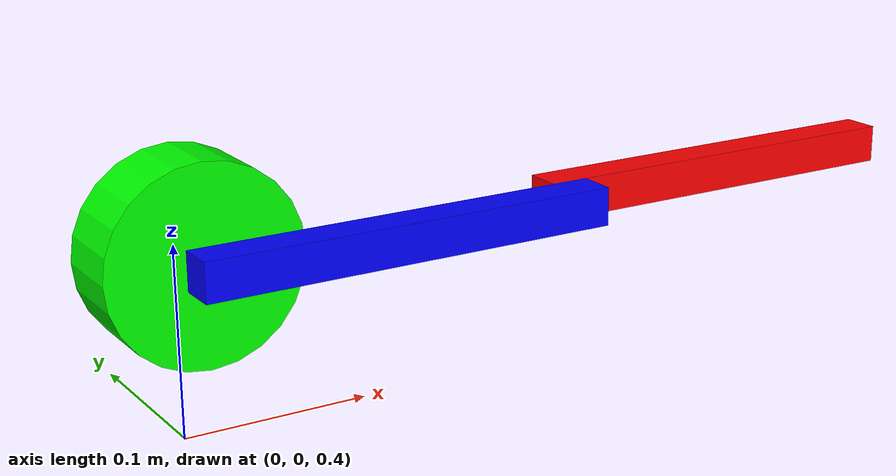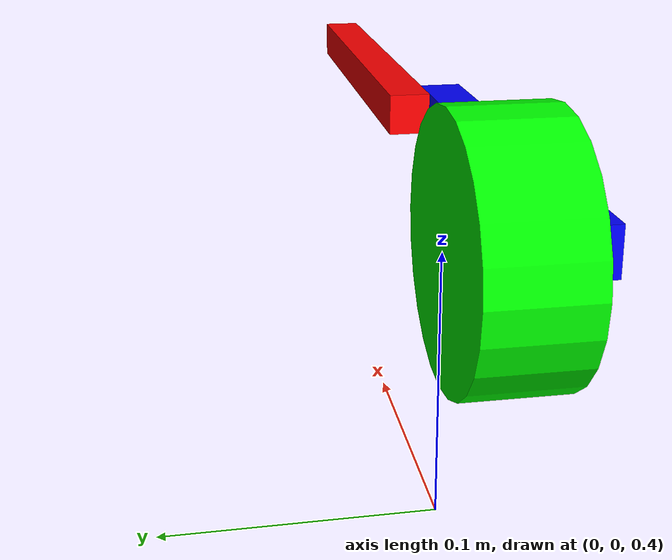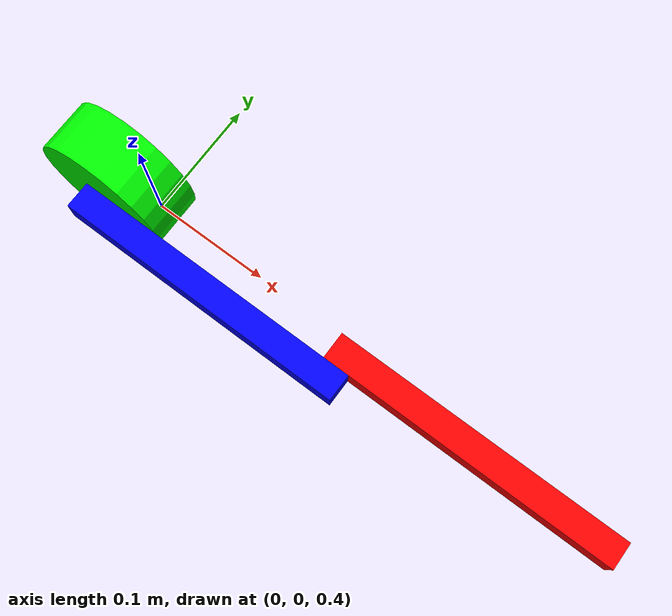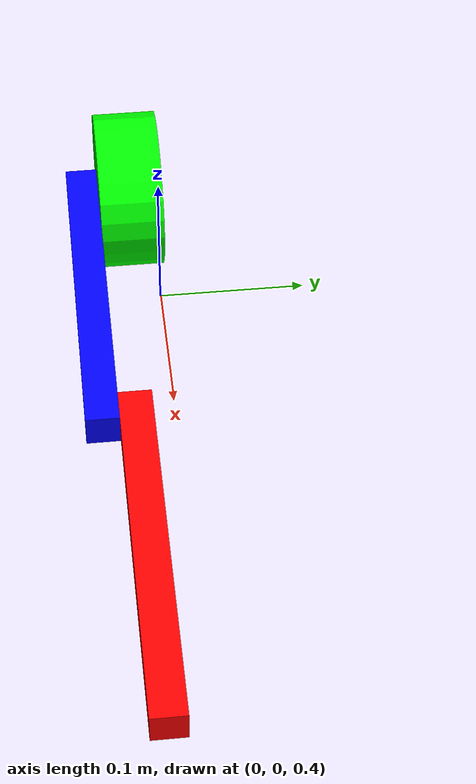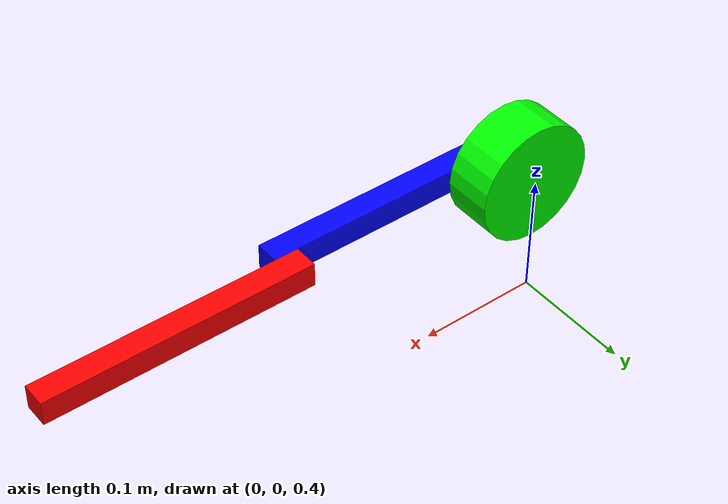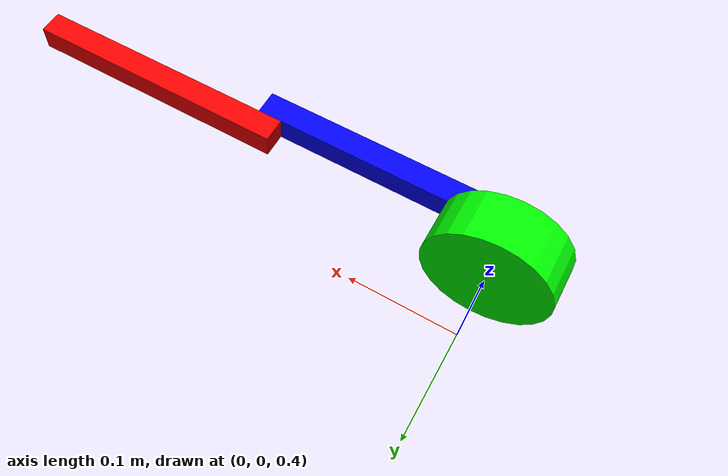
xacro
<?xml version="1.0"?>
<robot name="double_pendulum" xmlns:xacro="http://www.ros.org/wiki/xacro">

  <!-- Incluimos los parámetros comunes -->
  <xacro:include filename="$(find clase6)/robot_description/dp/dp_params.xacro" />

  <!--  DEFINICIONES DE ESLABONES  -->
  <!-- World link -->
  <link name="world" />
  <!-- Junta fija entre world y base_link -->
  <joint name="fixed" type="fixed">
    <parent link="world" />
    <child link="base_link" />
    <origin xyz="0 0 0.5" rpy="${pi/2.0} 0 0" />
  </joint>

  <!-- Link base (fijo) -->
  <!-- La terna 0 está centrada en la base del cilindro con el Z para arriba  -->
  <link name="base_link">
    <inertial>
      <origin xyz="0 0 ${height0/2.0}" />
      <mass value="${mass0}" />
      <inertia ixx="${ixx0}" ixy="0.0" ixz="0.0" iyy="${iyy0}" iyz="0.0" izz="${izz0}" />
    </inertial>
    <visual>
      <origin xyz="0 0 ${height0/2.0}" />
      <geometry>
        <cylinder radius="${radius0}" length="${height0}" />
      </geometry>
      <material name="green">
        <color rgba="0 1 0 1" />
      </material>
    </visual>
    <collision>
      <origin xyz="0 0 ${height0/2.0}" />
      <geometry>
        <cylinder radius="${radius0}" length="${height0}" />
      </geometry>
    </collision>
  </link>

  <!-- Primer eslabón -->
  <!-- La terna 1 está en la entrada del eslabón => DH proximal  -->
  <link name="link1">
    <inertial>
      <origin xyz="${a1/2.0} 0 0" />
      <mass value="${mass1}" />
      <inertia ixx="${ixx1}" ixy="0.0" ixz="0.0" iyy="${iyy1}" iyz="0.0" izz="${izz1}" />
    </inertial>
    <visual>
      <origin xyz="${a1/2.0} 0 0" />
      <geometry>
        <box size="${length1} ${width1} ${width1}" />
      </geometry>
      <material name="blue">
        <color rgba="0 0 1 1" />
      </material>
    </visual>
    <collision>
      <origin xyz="${a1/2.0} 0 0" />
      <geometry>
        <!-- Collision simplificada/reducida para mejorar estabilidad numérica
     y evitar self-collisions irrelevantes -->
        <box size="${length1} ${width1*0.75} ${width1*0.75}" />
      </geometry>
    </collision>
  </link>

  <!-- Segundo eslabón -->
  <!-- La terna 2 está en la entrada del eslabón => DH proximal  -->
  <link name="link2">
    <inertial>
      <origin xyz="${a2/2.0} 0 0" />
      <mass value="${mass2}" />
      <inertia ixx="${ixx2}" ixy="0.0" ixz="0.0" iyy="${iyy2}" iyz="0.0" izz="${izz2}" />
    </inertial>
    <visual>
      <origin xyz="${a2/2.0} 0 0" />
      <geometry>
        <box size="${length2} ${width2} ${width2}" />
      </geometry>
      <material name="red">
        <color rgba="1 0 0 1" />
      </material>
    </visual>
    <collision>
      <origin xyz="${a2/2.0} 0 0" />
      <geometry>
        <box size="${length2} ${width2} ${width2}" />
      </geometry>
    </collision>
  </link>

  <!--  DEFINICIONES DE JUNTAS  -->
  <!-- Junta entre base y link1 -->
  <joint name="joint1" type="revolute">
    <parent link="base_link" />
    <child link="link1" />
    <origin xyz="0 0 ${height0+width1/2.0}" rpy="0 0 0" />
    <axis xyz="0 0 1" />
    <limit effort="$(arg tau1_max)" lower="$(arg q1_min)" upper="$(arg q1_max)"
      velocity="$(arg qp1_max)" />
    <dynamics damping="$(arg damping1)" friction="$(arg friction1)" />
  </joint>

  <!-- Junta entre link1 y link2 -->
  <joint name="joint2" type="revolute">
    <parent link="link1" />
    <child link="link2" />
    <origin xyz="${a1} 0 ${-width1}" rpy="0 0 0" />
    <axis xyz="0 0 1" />
    <limit effort="$(arg tau2_max)" lower="$(arg q2_min)" upper="$(arg q2_max)"
      velocity="$(arg qp2_max)" />
    <dynamics damping="$(arg damping2)" friction="$(arg friction2)" />
  </joint>

  <!--  DEFINICIONES DE HERRAMIENTA  -->
  <!-- Terna TOOL0 en el extremo de link2 -->
  <joint name="tool0_joint" type="fixed">
    <parent link="link2" />
    <child link="tool0" />
    <origin xyz="${a2} 0 0" rpy="0 0 0" />
  </joint>
  <link name="tool0" />

  <!--  CONFIGURACION DE PLUGINS DE GAZEBO  -->
  <gazebo>
    <!-- Este plugin se encarga de publicar la información de la IMU en el topic /imu -->
    <plugin filename="gz-sim-imu-system"
      name="gz::sim::systems::Imu">
    </plugin>
  </gazebo>

  <!-- CONFIGURACION DE ros2_control -->
  <ros2_control name="GazeboSystem" type="system">
    <hardware>
      <plugin>gz_ros2_control/GazeboSimSystem</plugin>
    </hardware>
    <joint name="joint1">
      <command_interface name="effort">
        <param name="min">-100</param>
        <param name="max">100</param>
      </command_interface>
      <state_interface name="position">
        <param name="initial_value">$(arg q1_ini)</param>
      </state_interface>
      <state_interface name="velocity" />
      <state_interface name="effort" />
    </joint>
    <joint name="joint2">
      <command_interface name="effort">
        <param name="min">-100</param>
        <param name="max">100</param>
      </command_interface>
      <state_interface name="position">
        <param name="initial_value">$(arg q2_ini)</param>
      </state_interface>
      <state_interface name="velocity" />
      <state_interface name="effort" />
    </joint>
  </ros2_control>

  <!-- ros_control plugin. El archivo de configuración de controladores que pasamos al plugin lo
  recibimos como parámetro desde el launch al momento de cargar -->
  <xacro:arg name="controllers_file" default="$(find clase6)/config/ros2_dp_controllers.yaml" />
  <gazebo>
    <plugin filename="gz_ros2_control-system" name="gz_ros2_control::GazeboSimROS2ControlPlugin">
      <parameters>$(arg controllers_file)</parameters>
      <robot_param>robot_description</robot_param>
      <robot_param_node>robot_state_publisher</robot_param_node>
    </plugin>
  </gazebo>

  <!--  CONFIGURACION DE COLISIONES -->
  <!-- Self collision -->
  <gazebo>
    <self_collide>true</self_collide>
  </gazebo>

  <!--  CONFIGURACION DE SENSORES INTERNOS -->
  <gazebo reference="link2">
    <sensor name="imu_sensor" type="imu">
      <always_on>true</always_on>
      <update_rate>100</update_rate>
      <visualize>true</visualize>
      <topic>imu</topic>
      <imu>
        <angular_velocity>true</angular_velocity>
        <linear_acceleration>true</linear_acceleration>
      </imu>
    </sensor>
  </gazebo>

</robot>

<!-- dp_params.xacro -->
<robot xmlns:xacro="http://www.ros.org/wiki/xacro">

  <!-- Parámetros del eslabón 0. Cilindro y centro de masa en el centro -->
  <xacro:property name="mass0" value="1.5"/>
  <xacro:property name="radius0" value="0.05"/> <!-- largo total -->
  <xacro:property name="height0" value="0.04"/>

  <!-- Inercia para orientación: alto sobre el eje Z -->
  <!-- Inercia del cilindro, eje Z a lo largo de la altura -->
  <xacro:property name="ixx0" value="${(1.0/12.0) * mass0 * (3 * radius0 * radius0 + height0 * height0)}"/>
  <xacro:property name="iyy0" value="${ixx0}"/>
  <xacro:property name="izz0" value="${0.5 * mass0 * radius0 * radius0}"/>

  <!-- Parámetros del eslabón 1. Prisma de sección cuadrada y centro de masa en el centro -->
  <xacro:property name="mass1" value="1.5"/>                    <!-- masa de la barra que modela el eslabón -->
  <xacro:property name="length1" value="0.22"/>                 <!-- largo total -->
  <xacro:property name="width1" value="0.02"/>                  <!-- ancho de la sección total -->
  <xacro:property name="a1" value="${length1 - width1}"/>       <!-- distancia entre ejes -->
  <xacro:property name="Jm1" value="0.0001"/>                   <!-- inercia del rotor del motor -->
  <xacro:property name="N1"  value="10"/>                       <!-- relación de transmisión -->
  <xacro:property name="Jm1_ef" value="${N1*N1 * Jm1}"/>        <!-- inercia del rotor reflejada al eje -->

  <!-- Calculo de la inercia de una barra (con motor en eje de rotación) para orientación a lo largo del eje X -->
  <xacro:property name="ixx1" value="${(1.0/6.0) * mass1 * (width1 * width1)}"/>
  <xacro:property name="izz1" value="${(1.0/12.0) * mass1 * (length1 * length1 + width1 * width1) + Jm1_ef}"/> <!-- super simplificación a fines didácticos -->
  <xacro:property name="iyy1" value="${izz1}"/>

  <!-- Parámetros del eslabón 2. Prisma de sección cuadrada y centro de masa en el centro -->
  <xacro:property name="mass2" value="1.5"/>                    <!-- masa de la barra que modela el eslabón -->
  <xacro:property name="length2" value="0.22"/>                 <!-- largo total -->
  <xacro:property name="width2" value="0.02"/>                  <!-- ancho de la sección total -->
  <xacro:property name="a2" value="${length2 - width2}"/>       <!-- distancia entre ejes -->
  <xacro:property name="Jm2" value="0.0001"/>                   <!-- inercia del rotor del motor -->
  <xacro:property name="N2"  value="10"/>                       <!-- relación de transmisión -->
  <xacro:property name="Jm2_ef" value="${N2*N2 * Jm2}"/>        <!-- inercia del rotor reflejada al eje -->

  <!-- Calculo de la inercia de una barra (con motor en eje de rotación) para orientación a lo largo del eje X -->
  <xacro:property name="ixx2" value="${(1.0/6.0) * mass2 * (width2 * width2)}"/>
  <xacro:property name="izz2" value="${(1.0/12.0) * mass2 * (length2 * length2 + width2 * width2) + Jm2_ef}"/> <!-- super simplificación a fines didácticos -->
  <xacro:property name="iyy2" value="${izz2}"/>

  <!-- Valores que pueden modificarse en otros archivos xacro y que funcionan como argumentos -->
  <xacro:arg name="damping1" default="0.1"/>                 <!-- rozamiento viscoso -->
  <xacro:arg name="friction1" default="0.01"/>               <!-- rozamiento de Coulomb -->
  <xacro:arg name="damping2" default="0.1"/>                 <!-- rozamiento viscoso -->
  <xacro:arg name="friction2" default="0.01"/>               <!-- rozamiento de Coulomb -->

  <xacro:arg name="q1_max" default="3.14"/>                  <!-- límite físico superior eje 1 -->
  <xacro:arg name="q1_min" default="-3.14"/>                 <!-- límite físico inferior eje 1 -->
  <xacro:arg name="qp1_max" default="5.0"/>                  <!-- límite físico velocidad eje 1 -->
  <xacro:arg name="tau1_max" default="100.0"/>               <!-- límite físico del esfuerzo aplicable en eje 1 -->
  <xacro:arg name="q2_max" default="3.14"/>                  <!-- límite físico superior eje 2 -->
  <xacro:arg name="q2_min" default="-3.14"/>                 <!-- límite físico inferior eje 2 -->
  <xacro:arg name="qp2_max" default="5.0"/>                  <!-- límite físico velocidad eje 2 -->
  <xacro:arg name="tau2_max" default="100.0"/>               <!-- límite físico del esfuerzo aplicable en eje 2 -->

  <xacro:arg name="q1_ini" default="1.0"/>                   <!-- condición inicial de posición -->
  <xacro:arg name="q2_ini" default="1.0"/>                   <!-- condición inicial de posición -->
</robot>
